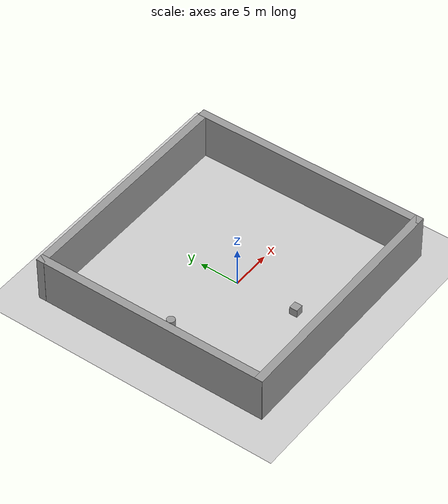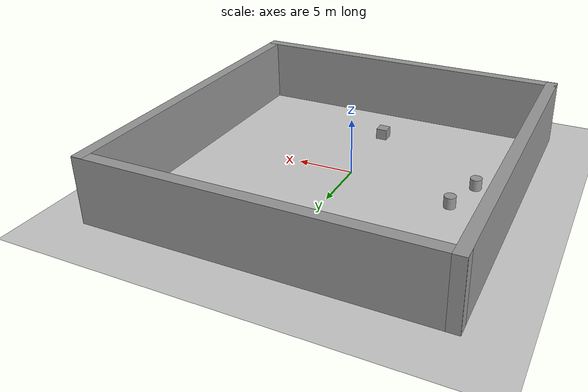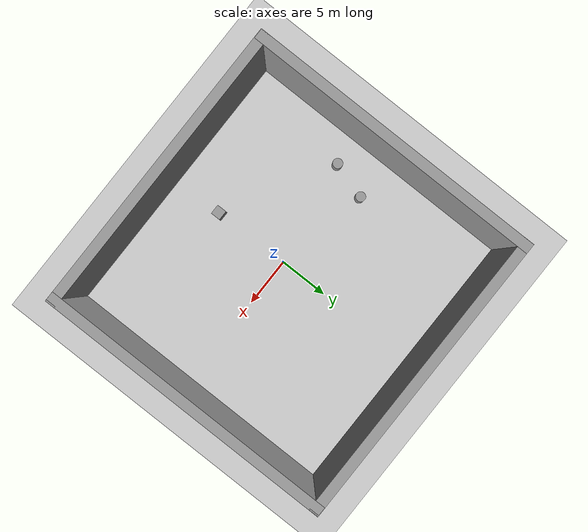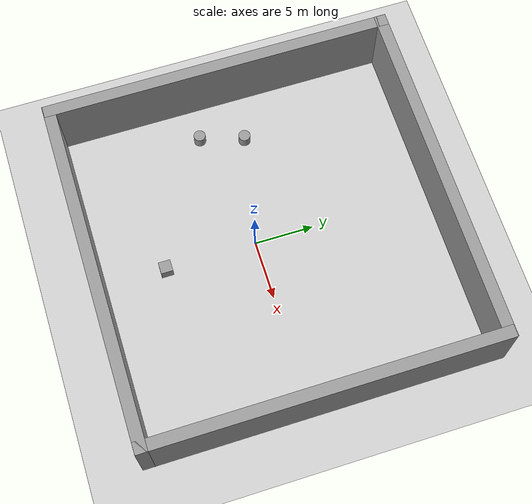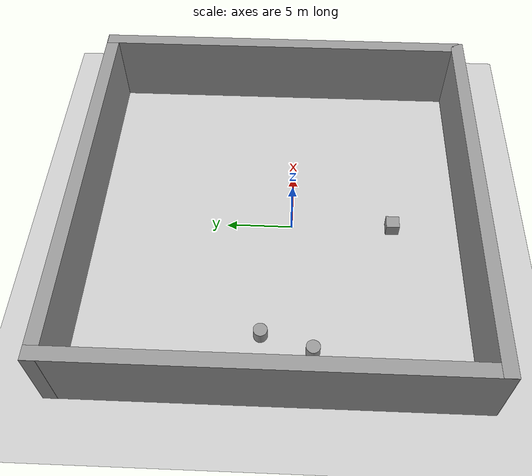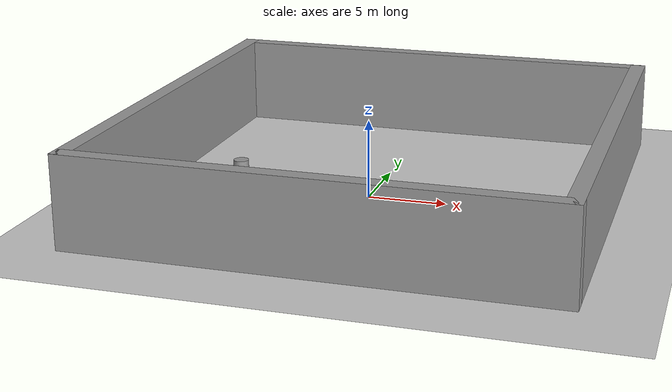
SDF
<sdf version="1.7">
 <world name="default">
  <light name="sun" type="directional">
   <pose>0 0 10 0 -0 0</pose>
   <diffuse>0.8 0.8 0.8 1</diffuse>
   <specular>0.2 0.2 0.2 1</specular>
   <attenuation>
    <range>1000</range>
    <constant>0.9</constant>
    <linear>0.01</linear>
    <quadratic>0.001</quadratic>
   </attenuation>
   <direction>-0.5 0.1 -0.9</direction>
   <spot><inner_angle>0</inner_angle><outer_angle>0</outer_angle><falloff>0</falloff></spot>
  </light>
  <model name="ground_plane">
   <static>1</static>
   <link name="link">
    <collision name="collision">
     <geometry><plane><normal>0 0 1</normal><size>100 100</size></plane></geometry>
     <surface><friction><ode><mu>100</mu><mu2>50</mu2></ode></friction></surface>
    </collision>
    <visual name="visual">
     <cast_shadows>0</cast_shadows>
     <geometry><plane><normal>0 0 1</normal><size>100 100</size></plane></geometry>
     <material>
      <script><uri>file://media/materials/scripts/gazebo.material</uri><name>Gazebo/Grey</name></script>
     </material>
    </visual>
   </link>
  </model>
  <gravity>0 0 -9.8</gravity>
  <magnetic_field>6e-06 2.3e-05 -4.2e-05</magnetic_field>
  <atmosphere type="adiabatic"/>
  <physics type="ode">
   <max_step_size>0.001</max_step_size>
   <real_time_factor>1</real_time_factor>
   <real_time_update_rate>1000</real_time_update_rate>
  </physics>
  <scene><ambient>0.4 0.4 0.4 1</ambient><background>0.7 0.7 0.7 1</background><shadows>1</shadows></scene>
  <audio><device>default</device></audio>
  <spherical_coordinates>
   <surface_model>EARTH_WGS84</surface_model>
   <latitude_deg>0</latitude_deg>
   <longitude_deg>0</longitude_deg>
   <elevation>0</elevation>
   <heading_deg>0</heading_deg>
  </spherical_coordinates>
  <model name="Building">
   <link name="link_0">
    <inertial>
     <mass>172.335</mass>
     <inertia><ixx>494.854</ixx><ixy>0</ixy><ixz>0</ixz><iyy>13228.2</iyy><iyz>0</iyz><izz>12762.1</izz></inertia>
    </inertial>
    <pose>3.45436 14.7587 0.787948 0 -0 0</pose>
    <visual name="visual">
     <geometry><box><size>29.7934 1 5.78425</size></box></geometry>
     <material>
      <lighting>1</lighting>
      <script><uri>file://media/materials/scripts/gazebo.material</uri><name>Gazebo/Grey</name></script>
      <shader type="pixel"/>
     </material>
    </visual>
    <collision name="collision">
     <geometry><box><size>29.7934 1 5.78425</size></box></geometry>
     <surface>
      <friction>
       <ode><mu>1</mu><mu2>1</mu2><fdir1>0 0 0</fdir1><slip1>0</slip1><slip2>0</slip2></ode>
       <torsional>
        <coefficient>1</coefficient>
        <patch_radius>0</patch_radius>
        <surface_radius>0</surface_radius>
        <use_patch_radius>1</use_patch_radius>
        <ode><slip>0</slip></ode>
       </torsional>
      </friction>
      <bounce><restitution_coefficient>0</restitution_coefficient><threshold>1e+06</threshold></bounce>
      <contact>
       <collide_without_contact>0</collide_without_contact>
       <collide_without_contact_bitmask>1</collide_without_contact_bitmask>
       <collide_bitmask>1</collide_bitmask>
       <ode>
        <soft_cfm>0</soft_cfm>
        <soft_erp>0.2</soft_erp>
        <kp>1e+13</kp>
        <kd>1</kd>
        <max_vel>0.01</max_vel>
        <min_depth>0</min_depth>
       </ode>
       <bullet>
        <split_impulse>1</split_impulse>
        <split_impulse_penetration_threshold>-0.01</split_impulse_penetration_threshold>
        <soft_cfm>0</soft_cfm>
        <soft_erp>0.2</soft_erp>
        <kp>1e+13</kp>
        <kd>1</kd>
       </bullet>
      </contact>
     </surface>
    </collision>
   </link>
   <link name="link_0_clone">
    <inertial>
     <mass>172.335</mass>
     <inertia><ixx>494.854</ixx><ixy>0</ixy><ixz>0</ixz><iyy>13228.2</iyy><iyz>0</iyz><izz>12762.1</izz></inertia>
    </inertial>
    <pose>3.47972 -14.0713 0.787953 0 -0 0</pose>
    <visual name="visual">
     <geometry><box><size>29.7934 1 5.78425</size></box></geometry>
     <material>
      <lighting>1</lighting>
      <script><uri>file://media/materials/scripts/gazebo.material</uri><name>Gazebo/Grey</name></script>
      <shader type="pixel"/>
     </material>
    </visual>
    <collision name="collision">
     <geometry><box><size>29.7934 1 5.78425</size></box></geometry>
     <surface>
      <friction>
       <ode><mu>1</mu><mu2>1</mu2><fdir1>0 0 0</fdir1><slip1>0</slip1><slip2>0</slip2></ode>
       <torsional>
        <coefficient>1</coefficient>
        <patch_radius>0</patch_radius>
        <surface_radius>0</surface_radius>
        <use_patch_radius>1</use_patch_radius>
        <ode><slip>0</slip></ode>
       </torsional>
      </friction>
      <bounce><restitution_coefficient>0</restitution_coefficient><threshold>1e+06</threshold></bounce>
      <contact>
       <collide_without_contact>0</collide_without_contact>
       <collide_without_contact_bitmask>1</collide_without_contact_bitmask>
       <collide_bitmask>1</collide_bitmask>
       <ode>
        <soft_cfm>0</soft_cfm>
        <soft_erp>0.2</soft_erp>
        <kp>1e+13</kp>
        <kd>1</kd>
        <max_vel>0.01</max_vel>
        <min_depth>0</min_depth>
       </ode>
       <bullet>
        <split_impulse>1</split_impulse>
        <split_impulse_penetration_threshold>-0.01</split_impulse_penetration_threshold>
        <soft_cfm>0</soft_cfm>
        <soft_erp>0.2</soft_erp>
        <kp>1e+13</kp>
        <kd>1</kd>
       </bullet>
      </contact>
     </surface>
    </collision>
   </link>
   <link name="link_0_clone_0">
    <inertial>
     <mass>172.335</mass>
     <inertia><ixx>494.854</ixx><ixy>0</ixy><ixz>0</ixz><iyy>13228.2</iyy><iyz>0</iyz><izz>12762.1</izz></inertia>
    </inertial>
    <pose>-10.9307 0.365114 0.787953 0 0 -1.5708</pose>
    <visual name="visual">
     <geometry><box><size>29.7934 1 5.78425</size></box></geometry>
     <material>
      <lighting>1</lighting>
      <script><uri>file://media/materials/scripts/gazebo.material</uri><name>Gazebo/Grey</name></script>
      <shader type="pixel"/>
     </material>
    </visual>
    <collision name="collision">
     <geometry><box><size>29.7934 1 5.78425</size></box></geometry>
     <surface>
      <friction>
       <ode><mu>1</mu><mu2>1</mu2><fdir1>0 0 0</fdir1><slip1>0</slip1><slip2>0</slip2></ode>
       <torsional>
        <coefficient>1</coefficient>
        <patch_radius>0</patch_radius>
        <surface_radius>0</surface_radius>
        <use_patch_radius>1</use_patch_radius>
        <ode><slip>0</slip></ode>
       </torsional>
      </friction>
      <bounce><restitution_coefficient>0</restitution_coefficient><threshold>1e+06</threshold></bounce>
      <contact>
       <collide_without_contact>0</collide_without_contact>
       <collide_without_contact_bitmask>1</collide_without_contact_bitmask>
       <collide_bitmask>1</collide_bitmask>
       <ode>
        <soft_cfm>0</soft_cfm>
        <soft_erp>0.2</soft_erp>
        <kp>1e+13</kp>
        <kd>1</kd>
        <max_vel>0.01</max_vel>
        <min_depth>0</min_depth>
       </ode>
       <bullet>
        <split_impulse>1</split_impulse>
        <split_impulse_penetration_threshold>-0.01</split_impulse_penetration_threshold>
        <soft_cfm>0</soft_cfm>
        <soft_erp>0.2</soft_erp>
        <kp>1e+13</kp>
        <kd>1</kd>
       </bullet>
      </contact>
     </surface>
    </collision>
   </link>
   <link name="link_0_clone_0_clone">
    <inertial>
     <mass>172.335</mass>
     <inertia><ixx>494.854</ixx><ixy>0</ixy><ixz>0</ixz><iyy>13228.2</iyy><iyz>0</iyz><izz>12762.1</izz></inertia>
    </inertial>
    <pose>17.8738 0.330498 0.787953 0 0 -1.5708</pose>
    <visual name="visual">
     <geometry><box><size>29.7934 1 5.78425</size></box></geometry>
     <material>
      <lighting>1</lighting>
      <script><uri>file://media/materials/scripts/gazebo.material</uri><name>Gazebo/Grey</name></script>
      <shader type="pixel"/>
     </material>
    </visual>
    <collision name="collision">
     <geometry><box><size>29.7934 1 5.78425</size></box></geometry>
     <surface>
      <friction>
       <ode><mu>1</mu><mu2>1</mu2><fdir1>0 0 0</fdir1><slip1>0</slip1><slip2>0</slip2></ode>
       <torsional>
        <coefficient>1</coefficient>
        <patch_radius>0</patch_radius>
        <surface_radius>0</surface_radius>
        <use_patch_radius>1</use_patch_radius>
        <ode><slip>0</slip></ode>
       </torsional>
      </friction>
      <bounce><restitution_coefficient>0</restitution_coefficient><threshold>1e+06</threshold></bounce>
      <contact>
       <collide_without_contact>0</collide_without_contact>
       <collide_without_contact_bitmask>1</collide_without_contact_bitmask>
       <collide_bitmask>1</collide_bitmask>
       <ode>
        <soft_cfm>0</soft_cfm>
        <soft_erp>0.2</soft_erp>
        <kp>1e+13</kp>
        <kd>1</kd>
        <max_vel>0.01</max_vel>
        <min_depth>0</min_depth>
       </ode>
       <bullet>
        <split_impulse>1</split_impulse>
        <split_impulse_penetration_threshold>-0.01</split_impulse_penetration_threshold>
        <soft_cfm>0</soft_cfm>
        <soft_erp>0.2</soft_erp>
        <kp>1e+13</kp>
        <kd>1</kd>
       </bullet>
      </contact>
     </surface>
    </collision>
   </link>
   <link name="link_1">
    <inertial>
     <mass>1</mass>
     <inertia><ixx>0.145833</ixx><ixy>0</ixy><ixz>0</ixz><iyy>0.145833</iyy><iyz>0</iyz><izz>0.125</izz></inertia>
    </inertial>
    <pose>-7.50067 -2.52448 -1.57591 0 -0 0</pose>
    <visual name="visual">
     <geometry><cylinder><radius>0.5</radius><length>1</length></cylinder></geometry>
     <material>
      <lighting>1</lighting>
      <script><uri>file://media/materials/scripts/gazebo.material</uri><name>Gazebo/Grey</name></script>
      <shader type="pixel"/>
     </material>
    </visual>
    <collision name="collision">
     <geometry><cylinder><radius>0.5</radius><length>1</length></cylinder></geometry>
     <surface>
      <friction>
       <ode><mu>1</mu><mu2>1</mu2><fdir1>0 0 0</fdir1><slip1>0</slip1><slip2>0</slip2></ode>
       <torsional>
        <coefficient>1</coefficient>
        <patch_radius>0</patch_radius>
        <surface_radius>0</surface_radius>
        <use_patch_radius>1</use_patch_radius>
        <ode><slip>0</slip></ode>
       </torsional>
      </friction>
      <bounce><restitution_coefficient>0</restitution_coefficient><threshold>1e+06</threshold></bounce>
      <contact>
       <collide_without_contact>0</collide_without_contact>
       <collide_without_contact_bitmask>1</collide_without_contact_bitmask>
       <collide_bitmask>1</collide_bitmask>
       <ode>
        <soft_cfm>0</soft_cfm>
        <soft_erp>0.2</soft_erp>
        <kp>1e+13</kp>
        <kd>1</kd>
        <max_vel>0.01</max_vel>
        <min_depth>0</min_depth>
       </ode>
       <bullet>
        <split_impulse>1</split_impulse>
        <split_impulse_penetration_threshold>-0.01</split_impulse_penetration_threshold>
        <soft_cfm>0</soft_cfm>
        <soft_erp>0.2</soft_erp>
        <kp>1e+13</kp>
        <kd>1</kd>
       </bullet>
      </contact>
     </surface>
    </collision>
   </link>
   <link name="link_2">
    <inertial>
     <mass>1</mass>
     <inertia><ixx>0.145833</ixx><ixy>0</ixy><ixz>0</ixz><iyy>0.145833</iyy><iyz>0</iyz><izz>0.125</izz></inertia>
    </inertial>
    <pose>-6.37647 1.14144 -1.57591 0 -0 0</pose>
    <visual name="visual">
     <geometry><cylinder><radius>0.5</radius><length>1</length></cylinder></geometry>
     <material>
      <lighting>1</lighting>
      <script><uri>file://media/materials/scripts/gazebo.material</uri><name>Gazebo/Grey</name></script>
      <shader type="pixel"/>
     </material>
    </visual>
    <collision name="collision">
     <geometry><cylinder><radius>0.5</radius><length>1</length></cylinder></geometry>
     <surface>
      <friction>
       <ode><mu>1</mu><mu2>1</mu2><fdir1>0 0 0</fdir1><slip1>0</slip1><slip2>0</slip2></ode>
       <torsional>
        <coefficient>1</coefficient>
        <patch_radius>0</patch_radius>
        <surface_radius>0</surface_radius>
        <use_patch_radius>1</use_patch_radius>
        <ode><slip>0</slip></ode>
       </torsional>
      </friction>
      <bounce><restitution_coefficient>0</restitution_coefficient><threshold>1e+06</threshold></bounce>
      <contact>
       <collide_without_contact>0</collide_without_contact>
       <collide_without_contact_bitmask>1</collide_without_contact_bitmask>
       <collide_bitmask>1</collide_bitmask>
       <ode>
        <soft_cfm>0</soft_cfm>
        <soft_erp>0.2</soft_erp>
        <kp>1e+13</kp>
        <kd>1</kd>
        <max_vel>0.01</max_vel>
        <min_depth>0</min_depth>
       </ode>
       <bullet>
        <split_impulse>1</split_impulse>
        <split_impulse_penetration_threshold>-0.01</split_impulse_penetration_threshold>
        <soft_cfm>0</soft_cfm>
        <soft_erp>0.2</soft_erp>
        <kp>1e+13</kp>
        <kd>1</kd>
       </bullet>
      </contact>
     </surface>
    </collision>
   </link>
   <static>0</static>
   <pose>-3.04008 0.778946 2.10417 -0 -1e-06 -1.1e-05</pose>
  </model>
  <model name="unit_box">
   <pose>0.126639 -7.71498 0.5 0 -0 0</pose>
   <link name="link">
    <inertial>
     <mass>1</mass>
     <inertia>
      <ixx>0.166667</ixx>
      <ixy>0</ixy>
      <ixz>0</ixz>
      <iyy>0.166667</iyy>
      <iyz>0</iyz>
      <izz>0.166667</izz>
     </inertia>
    </inertial>
    <collision name="collision"><geometry><box><size>1 1 1</size></box></geometry></collision>
    <visual name="visual">
     <geometry><box><size>1 1 1</size></box></geometry>
     <material>
      <script><name>Gazebo/Grey</name><uri>file://media/materials/scripts/gazebo.material</uri></script>
     </material>
    </visual>
   </link>
  </model>
 </world>
</sdf>
